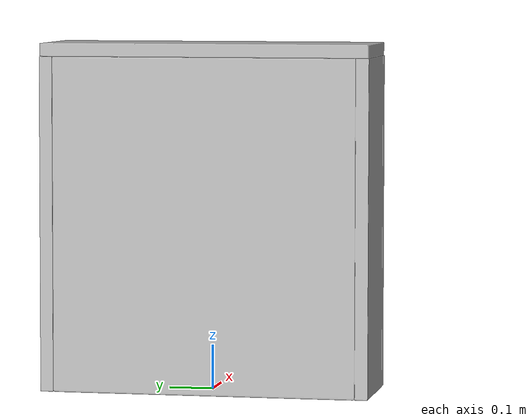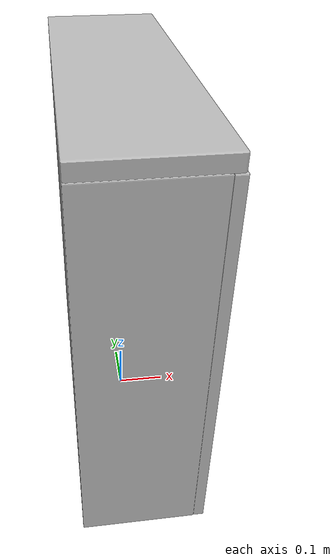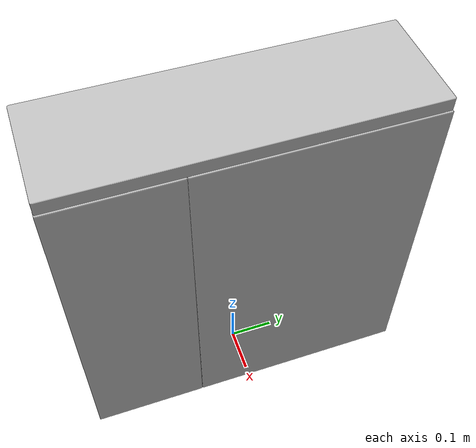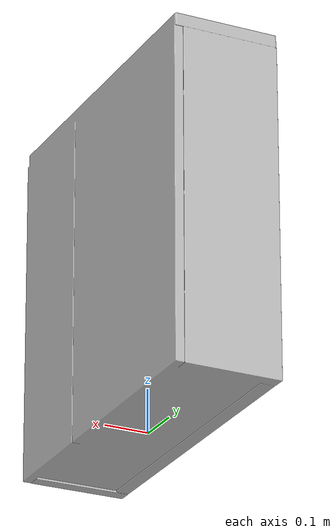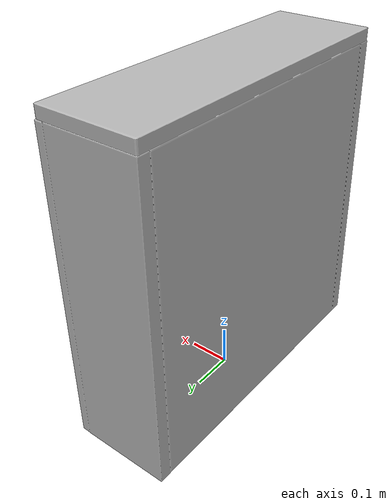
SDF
<?xml version='1.0'?>
<sdf version='1.4'>
  <model name='182'>
    <pose>0 0 0 0 0 0</pose>
    <static>true</static>
    <link name='link'>
      <collision name='collision'>
        <pose>0 0 0 0 0 0</pose>
        <geometry>
          <box>
            <size>0.240007 0.75 2</size>
          </box>
        </geometry>
      </collision>
      <visual name='visual'>
        <pose>0 0 0 0 0 0</pose>
        <geometry>
          <mesh><uri>model://182/182.dae</uri></mesh>
        </geometry>
      </visual>
    </link>
  </model>
</sdf>
